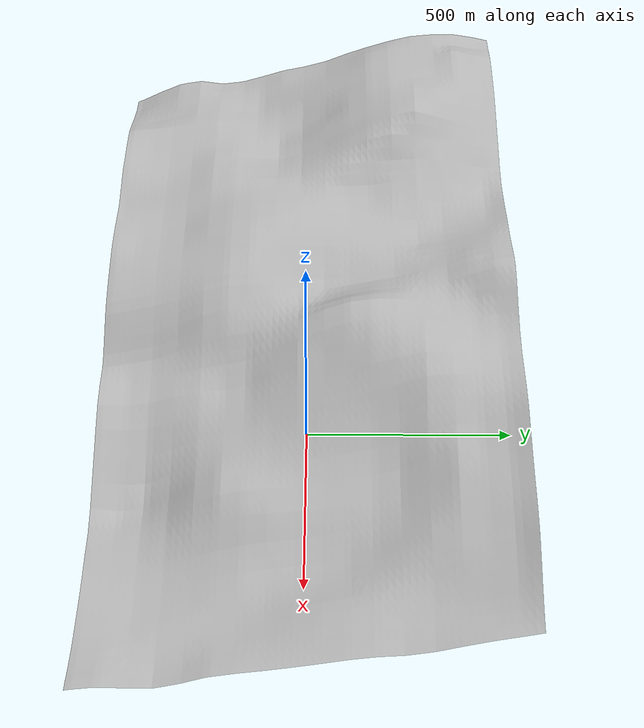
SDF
<?xml version="1.0" ?>
<sdf version="1.4">
  <model name="l3">
	<static>true</static>
	<link name="link">
	  <pose>-400 0 133 0 0 0</pose>
	    <collision name="my_collision">
		<geometry>
                   <mesh><uri>model://l3/untitled.dae</uri></mesh>
		 </geometry>
	    </collision>

	    <visual name="my_visual">
		<geometry>
                   <mesh><uri>model://l3/untitled.dae</uri></mesh>
		 </geometry>
	    </visual>
	</link>
</model>
</sdf>
